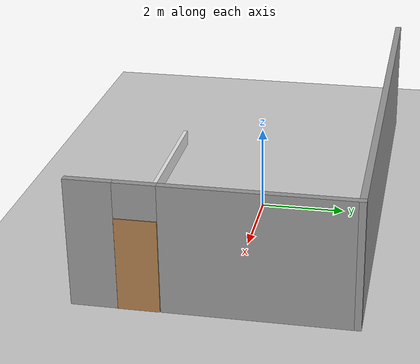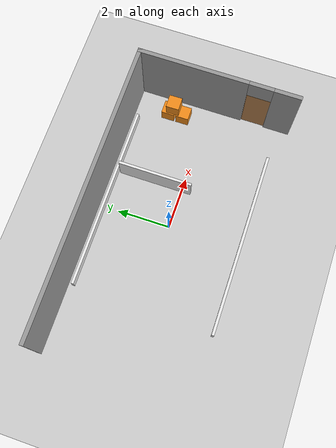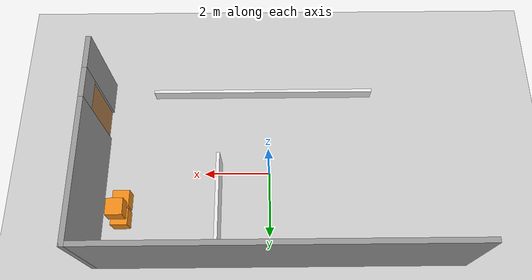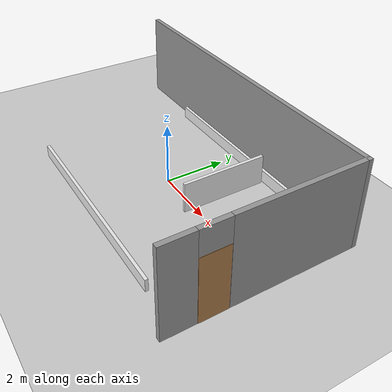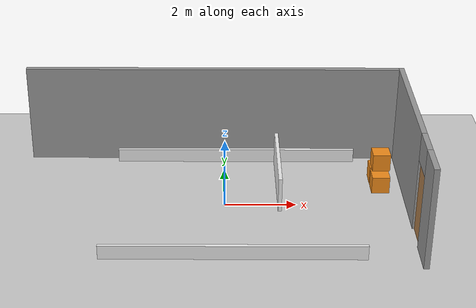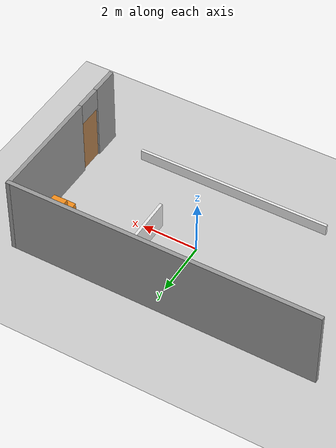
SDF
<sdf version="1.6">
 <world name="default">
  <model name="ground_plane">
   <static>1</static>
   <link name="link">
    <collision name="collision">
     <geometry><plane><normal>0 0 1</normal><size>100 100</size></plane></geometry>
     <surface>
      <contact><collide_bitmask>65535</collide_bitmask></contact>
      <friction><ode><mu>100</mu><mu2>50</mu2></ode></friction>
     </surface>
    </collision>
    <visual name="visual">
     <cast_shadows>0</cast_shadows>
     <geometry><plane><normal>0 0 1</normal><size>100 100</size></plane></geometry>
     <material>
      <script><uri>file://media/materials/scripts/gazebo.material</uri><name>Gazebo/Grey</name></script>
     </material>
    </visual>
   </link>
  </model>
  <model name="nrsl">
   <link name="Wall_1">
    <pose>5.41 2.97 0 0 -0 1.5708</pose>
    <visual name="Wall_1_Visual_0">
     <pose>-2.53694 0 1.45 0 -0 0</pose>
     <geometry><box><size>1.01612 0.15 2.9</size></box></geometry>
     <material>
      <script><uri>file://media/materials/scripts/gazebo.material</uri><name>Gazebo/Grey</name></script>
      <ambient>1 1 1 1</ambient>
     </material>
     <meta><layer>0</layer></meta>
    </visual>
    <visual name="Wall_1_Visual_1">
     <pose>0.965058 0 1.45 0 -0 0</pose>
     <geometry><box><size>4.15988 0.15 2.9</size></box></geometry>
     <material>
      <script><uri>file://media/materials/scripts/gazebo.material</uri><name>Gazebo/Grey</name></script>
      <ambient>1 1 1 1</ambient>
     </material>
     <meta><layer>0</layer></meta>
    </visual>
    <visual name="Wall_1_Visual_2">
     <pose>-1.57188 0 2.504 0 -0 0</pose>
     <geometry><box><size>0.914 0.15 0.792</size></box></geometry>
     <material>
      <script><uri>file://media/materials/scripts/gazebo.material</uri><name>Gazebo/Grey</name></script>
      <ambient>1 1 1 1</ambient>
     </material>
     <meta><layer>0</layer></meta>
    </visual>
    <collision name="Wall_1_Collision_0">
     <pose>-2.53694 0 1.45 0 -0 0</pose>
     <geometry><box><size>1.01612 0.15 2.9</size></box></geometry>
     <surface>
      <friction>
       <ode><mu>1</mu><mu2>1</mu2><fdir1>0 0 0</fdir1><slip1>0</slip1><slip2>0</slip2></ode>
       <torsional>
        <coefficient>1</coefficient>
        <patch_radius>0</patch_radius>
        <surface_radius>0</surface_radius>
        <use_patch_radius>1</use_patch_radius>
        <ode><slip>0</slip></ode>
       </torsional>
      </friction>
      <bounce><restitution_coefficient>0</restitution_coefficient><threshold>1e+06</threshold></bounce>
      <contact>
       <collide_without_contact>0</collide_without_contact>
       <collide_without_contact_bitmask>1</collide_without_contact_bitmask>
       <collide_bitmask>1</collide_bitmask>
       <ode>
        <soft_cfm>0</soft_cfm>
        <soft_erp>0.2</soft_erp>
        <kp>1e+13</kp>
        <kd>1</kd>
        <max_vel>0.01</max_vel>
        <min_depth>0</min_depth>
       </ode>
       <bullet>
        <split_impulse>1</split_impulse>
        <split_impulse_penetration_threshold>-0.01</split_impulse_penetration_threshold>
        <soft_cfm>0</soft_cfm>
        <soft_erp>0.2</soft_erp>
        <kp>1e+13</kp>
        <kd>1</kd>
       </bullet>
      </contact>
     </surface>
    </collision>
    <collision name="Wall_1_Collision_1">
     <pose>0.965058 0 1.45 0 -0 0</pose>
     <geometry><box><size>4.15988 0.15 2.9</size></box></geometry>
     <surface>
      <friction>
       <ode><mu>1</mu><mu2>1</mu2><fdir1>0 0 0</fdir1><slip1>0</slip1><slip2>0</slip2></ode>
       <torsional>
        <coefficient>1</coefficient>
        <patch_radius>0</patch_radius>
        <surface_radius>0</surface_radius>
        <use_patch_radius>1</use_patch_radius>
        <ode><slip>0</slip></ode>
       </torsional>
      </friction>
      <bounce><restitution_coefficient>0</restitution_coefficient><threshold>1e+06</threshold></bounce>
      <contact>
       <collide_without_contact>0</collide_without_contact>
       <collide_without_contact_bitmask>1</collide_without_contact_bitmask>
       <collide_bitmask>1</collide_bitmask>
       <ode>
        <soft_cfm>0</soft_cfm>
        <soft_erp>0.2</soft_erp>
        <kp>1e+13</kp>
        <kd>1</kd>
        <max_vel>0.01</max_vel>
        <min_depth>0</min_depth>
       </ode>
       <bullet>
        <split_impulse>1</split_impulse>
        <split_impulse_penetration_threshold>-0.01</split_impulse_penetration_threshold>
        <soft_cfm>0</soft_cfm>
        <soft_erp>0.2</soft_erp>
        <kp>1e+13</kp>
        <kd>1</kd>
       </bullet>
      </contact>
     </surface>
    </collision>
    <collision name="Wall_1_Collision_2">
     <pose>-1.57188 0 2.504 0 -0 0</pose>
     <geometry><box><size>0.914 0.15 0.792</size></box></geometry>
     <surface>
      <friction>
       <ode><mu>1</mu><mu2>1</mu2><fdir1>0 0 0</fdir1><slip1>0</slip1><slip2>0</slip2></ode>
       <torsional>
        <coefficient>1</coefficient>
        <patch_radius>0</patch_radius>
        <surface_radius>0</surface_radius>
        <use_patch_radius>1</use_patch_radius>
        <ode><slip>0</slip></ode>
       </torsional>
      </friction>
      <bounce><restitution_coefficient>0</restitution_coefficient><threshold>1e+06</threshold></bounce>
      <contact>
       <collide_without_contact>0</collide_without_contact>
       <collide_without_contact_bitmask>1</collide_without_contact_bitmask>
       <collide_bitmask>1</collide_bitmask>
       <ode>
        <soft_cfm>0</soft_cfm>
        <soft_erp>0.2</soft_erp>
        <kp>1e+13</kp>
        <kd>1</kd>
        <max_vel>0.01</max_vel>
        <min_depth>0</min_depth>
       </ode>
       <bullet>
        <split_impulse>1</split_impulse>
        <split_impulse_penetration_threshold>-0.01</split_impulse_penetration_threshold>
        <soft_cfm>0</soft_cfm>
        <soft_erp>0.2</soft_erp>
        <kp>1e+13</kp>
        <kd>1</kd>
       </bullet>
      </contact>
     </surface>
    </collision>
   </link>
   <link name="Wall_2">
    <pose>0 5.94 0 0 -0 3.14159</pose>
    <visual name="Wall_2_Visual">
     <pose>0 0 1.45 0 -0 0</pose>
     <geometry><box><size>10.97 0.15 2.9</size></box></geometry>
     <material>
      <script><uri>file://media/materials/scripts/gazebo.material</uri><name>Gazebo/Grey</name></script>
      <ambient>1 1 1 1</ambient>
     </material>
     <meta><layer>0</layer></meta>
    </visual>
    <collision name="Wall_2_Collision">
     <pose>0 0 1.45 0 -0 0</pose>
     <geometry><box><size>10.97 0.15 2.9</size></box></geometry>
     <surface>
      <friction>
       <ode><mu>1</mu><mu2>1</mu2><fdir1>0 0 0</fdir1><slip1>0</slip1><slip2>0</slip2></ode>
       <torsional>
        <coefficient>1</coefficient>
        <patch_radius>0</patch_radius>
        <surface_radius>0</surface_radius>
        <use_patch_radius>1</use_patch_radius>
        <ode><slip>0</slip></ode>
       </torsional>
      </friction>
      <bounce><restitution_coefficient>0</restitution_coefficient><threshold>1e+06</threshold></bounce>
      <contact>
       <collide_without_contact>0</collide_without_contact>
       <collide_without_contact_bitmask>1</collide_without_contact_bitmask>
       <collide_bitmask>1</collide_bitmask>
       <ode>
        <soft_cfm>0</soft_cfm>
        <soft_erp>0.2</soft_erp>
        <kp>1e+13</kp>
        <kd>1</kd>
        <max_vel>0.01</max_vel>
        <min_depth>0</min_depth>
       </ode>
       <bullet>
        <split_impulse>1</split_impulse>
        <split_impulse_penetration_threshold>-0.01</split_impulse_penetration_threshold>
        <soft_cfm>0</soft_cfm>
        <soft_erp>0.2</soft_erp>
        <kp>1e+13</kp>
        <kd>1</kd>
       </bullet>
      </contact>
     </surface>
    </collision>
   </link>
   <static>1</static>
   <pose>-0.282297 -3.10716 0 0 -0 0</pose>
  </model>
  <model name="door_0">
   <link name="link">
    <inertial>
     <mass>1</mass>
     <inertia>
      <ixx>0.166667</ixx>
      <ixy>0</ixy>
      <ixz>0</ixz>
      <iyy>0.166667</iyy>
      <iyz>0</iyz>
      <izz>0.166667</izz>
     </inertia>
    </inertial>
    <visual name="visual">
     <geometry><box><size>0.1 0.9 2.1</size></box></geometry>
     <material>
      <script><name>Gazebo/Wood</name><uri>file://media/materials/scripts/gazebo.material</uri></script>
     </material>
     <pose>0 0 1.05 0 -0 0</pose>
    </visual>
    <collision name="collision">
     <pose>0 0 1.05 0 -0 0</pose>
     <geometry><box><size>0.1 0.9 2.1</size></box></geometry>
     <surface>
      <friction>
       <ode><mu>1</mu><mu2>1</mu2><fdir1>0 0 0</fdir1><slip1>0</slip1><slip2>0</slip2></ode>
       <torsional>
        <coefficient>1</coefficient>
        <patch_radius>0</patch_radius>
        <surface_radius>0</surface_radius>
        <use_patch_radius>1</use_patch_radius>
        <ode><slip>0</slip></ode>
       </torsional>
      </friction>
      <bounce><restitution_coefficient>0</restitution_coefficient><threshold>1e+06</threshold></bounce>
      <contact>
       <collide_without_contact>0</collide_without_contact>
       <collide_without_contact_bitmask>1</collide_without_contact_bitmask>
       <collide_bitmask>1</collide_bitmask>
       <ode>
        <soft_cfm>0</soft_cfm>
        <soft_erp>0.2</soft_erp>
        <kp>1e+13</kp>
        <kd>1</kd>
        <max_vel>0.01</max_vel>
        <min_depth>0</min_depth>
       </ode>
       <bullet>
        <split_impulse>1</split_impulse>
        <split_impulse_penetration_threshold>-0.01</split_impulse_penetration_threshold>
        <soft_cfm>0</soft_cfm>
        <soft_erp>0.2</soft_erp>
        <kp>1e+13</kp>
        <kd>1</kd>
       </bullet>
      </contact>
     </surface>
    </collision>
   </link>
   <static>0</static>
   <pose>5.15935 -1.71289 -3e-06 -8e-06 0 0</pose>
  </model>
  <model name="box_12">
   <link name="link">
    <inertial>
     <mass>1</mass>
     <inertia>
      <ixx>0.166667</ixx>
      <ixy>0</ixy>
      <ixz>0</ixz>
      <iyy>0.166667</iyy>
      <iyz>0</iyz>
      <izz>0.166667</izz>
     </inertia>
    </inertial>
    <visual name="visual">
     <geometry><box><size>0.5 0.5 0.5</size></box></geometry>
     <material>
      <script><name>Gazebo/Orange</name><uri>file://media/materials/scripts/gazebo.material</uri></script>
     </material>
     <pose>0 0 0.25 0 -0 0</pose>
    </visual>
    <collision name="collision">
     <pose>0 0 0.25 0 -0 0</pose>
     <geometry><box><size>0.5 0.5 0.5</size></box></geometry>
     <surface>
      <friction>
       <ode><mu>1</mu><mu2>1</mu2><fdir1>0 0 0</fdir1><slip1>0</slip1><slip2>0</slip2></ode>
       <torsional>
        <coefficient>1</coefficient>
        <patch_radius>0</patch_radius>
        <surface_radius>0</surface_radius>
        <use_patch_radius>1</use_patch_radius>
        <ode><slip>0</slip></ode>
       </torsional>
      </friction>
      <bounce><restitution_coefficient>0</restitution_coefficient><threshold>1e+06</threshold></bounce>
      <contact>
       <collide_without_contact>0</collide_without_contact>
       <collide_without_contact_bitmask>1</collide_without_contact_bitmask>
       <collide_bitmask>1</collide_bitmask>
       <ode>
        <soft_cfm>0</soft_cfm>
        <soft_erp>0.2</soft_erp>
        <kp>1e+13</kp>
        <kd>1</kd>
        <max_vel>0.01</max_vel>
        <min_depth>0</min_depth>
       </ode>
       <bullet>
        <split_impulse>1</split_impulse>
        <split_impulse_penetration_threshold>-0.01</split_impulse_penetration_threshold>
        <soft_cfm>0</soft_cfm>
        <soft_erp>0.2</soft_erp>
        <kp>1e+13</kp>
        <kd>1</kd>
       </bullet>
      </contact>
     </surface>
    </collision>
   </link>
   <static>0</static>
   <pose>4.42985 1.46787 -0 0 -0 0.001116</pose>
  </model>
  <model name="box_13">
   <link name="link">
    <inertial>
     <mass>1</mass>
     <inertia>
      <ixx>0.166667</ixx>
      <ixy>0</ixy>
      <ixz>0</ixz>
      <iyy>0.166667</iyy>
      <iyz>0</iyz>
      <izz>0.166667</izz>
     </inertia>
    </inertial>
    <visual name="visual">
     <geometry><box><size>0.5 0.5 0.5</size></box></geometry>
     <material>
      <script><name>Gazebo/Orange</name><uri>file://media/materials/scripts/gazebo.material</uri></script>
     </material>
     <pose>0 0 0.25 0 -0 0</pose>
    </visual>
    <collision name="collision">
     <pose>0 0 0.25 0 -0 0</pose>
     <geometry><box><size>0.5 0.5 0.5</size></box></geometry>
     <surface>
      <friction>
       <ode><mu>1</mu><mu2>1</mu2><fdir1>0 0 0</fdir1><slip1>0</slip1><slip2>0</slip2></ode>
       <torsional>
        <coefficient>1</coefficient>
        <patch_radius>0</patch_radius>
        <surface_radius>0</surface_radius>
        <use_patch_radius>1</use_patch_radius>
        <ode><slip>0</slip></ode>
       </torsional>
      </friction>
      <bounce><restitution_coefficient>0</restitution_coefficient><threshold>1e+06</threshold></bounce>
      <contact>
       <collide_without_contact>0</collide_without_contact>
       <collide_without_contact_bitmask>1</collide_without_contact_bitmask>
       <collide_bitmask>1</collide_bitmask>
       <ode>
        <soft_cfm>0</soft_cfm>
        <soft_erp>0.2</soft_erp>
        <kp>1e+13</kp>
        <kd>1</kd>
        <max_vel>0.01</max_vel>
        <min_depth>0</min_depth>
       </ode>
       <bullet>
        <split_impulse>1</split_impulse>
        <split_impulse_penetration_threshold>-0.01</split_impulse_penetration_threshold>
        <soft_cfm>0</soft_cfm>
        <soft_erp>0.2</soft_erp>
        <kp>1e+13</kp>
        <kd>1</kd>
       </bullet>
      </contact>
     </surface>
    </collision>
   </link>
   <static>0</static>
   <pose>4.43593 0.901146 -3.5e-05 0 2.3e-05 -0.000634</pose>
  </model>
  <model name="box_1_3">
   <link name="link">
    <inertial>
     <mass>1</mass>
     <inertia>
      <ixx>0.166667</ixx>
      <ixy>0</ixy>
      <ixz>0</ixz>
      <iyy>0.166667</iyy>
      <iyz>0</iyz>
      <izz>0.166667</izz>
     </inertia>
    </inertial>
    <visual name="visual">
     <geometry><box><size>0.5 0.5 0.5</size></box></geometry>
     <material>
      <script><name>Gazebo/Orange</name><uri>file://media/materials/scripts/gazebo.material</uri></script>
     </material>
     <pose>0 0 0.75 0 -0 0</pose>
    </visual>
    <collision name="collision">
     <pose>0 0 0.75 0 -0 0</pose>
     <geometry><box><size>0.5 0.5 0.5</size></box></geometry>
     <surface>
      <friction>
       <ode><mu>1</mu><mu2>1</mu2><fdir1>0 0 0</fdir1><slip1>0</slip1><slip2>0</slip2></ode>
       <torsional>
        <coefficient>1</coefficient>
        <patch_radius>0</patch_radius>
        <surface_radius>0</surface_radius>
        <use_patch_radius>1</use_patch_radius>
        <ode><slip>0</slip></ode>
       </torsional>
      </friction>
      <bounce><restitution_coefficient>0</restitution_coefficient><threshold>1e+06</threshold></bounce>
      <contact>
       <collide_without_contact>0</collide_without_contact>
       <collide_without_contact_bitmask>1</collide_without_contact_bitmask>
       <collide_bitmask>1</collide_bitmask>
       <ode>
        <soft_cfm>0</soft_cfm>
        <soft_erp>0.2</soft_erp>
        <kp>1e+13</kp>
        <kd>1</kd>
        <max_vel>0.01</max_vel>
        <min_depth>0</min_depth>
       </ode>
       <bullet>
        <split_impulse>1</split_impulse>
        <split_impulse_penetration_threshold>-0.01</split_impulse_penetration_threshold>
        <soft_cfm>0</soft_cfm>
        <soft_erp>0.2</soft_erp>
        <kp>1e+13</kp>
        <kd>1</kd>
       </bullet>
      </contact>
     </surface>
    </collision>
   </link>
   <static>0</static>
   <pose>4.47408 1.30458 1.8e-05 2.3e-05 -6.3e-05 0.013138</pose>
  </model>
  <model name="fence1_0_1">
   <link name="link">
    <inertial>
     <mass>1</mass>
     <inertia>
      <ixx>0.166667</ixx>
      <ixy>0</ixy>
      <ixz>0</ixz>
      <iyy>0.166667</iyy>
      <iyz>0</iyz>
      <izz>0.166667</izz>
     </inertia>
    </inertial>
    <visual name="visual">
     <geometry><box><size>7 0.1 0.4</size></box></geometry>
     <material>
      <script><name>Gazebo/White</name><uri>file://media/materials/scripts/gazebo.material</uri></script>
     </material>
     <pose>0 0 0.2 0 -0 0</pose>
    </visual>
    <collision name="collision">
     <pose>0 0 0.2 0 -0 0</pose>
     <geometry><box><size>7 0.1 0.4</size></box></geometry>
     <surface>
      <friction>
       <ode><mu>1</mu><mu2>1</mu2><fdir1>0 0 0</fdir1><slip1>0</slip1><slip2>0</slip2></ode>
       <torsional>
        <coefficient>1</coefficient>
        <patch_radius>0</patch_radius>
        <surface_radius>0</surface_radius>
        <use_patch_radius>1</use_patch_radius>
        <ode><slip>0</slip></ode>
       </torsional>
      </friction>
      <bounce><restitution_coefficient>0</restitution_coefficient><threshold>1e+06</threshold></bounce>
      <contact>
       <collide_without_contact>0</collide_without_contact>
       <collide_without_contact_bitmask>1</collide_without_contact_bitmask>
       <collide_bitmask>1</collide_bitmask>
       <ode>
        <soft_cfm>0</soft_cfm>
        <soft_erp>0.2</soft_erp>
        <kp>1e+13</kp>
        <kd>1</kd>
        <max_vel>0.01</max_vel>
        <min_depth>0</min_depth>
       </ode>
       <bullet>
        <split_impulse>1</split_impulse>
        <split_impulse_penetration_threshold>-0.01</split_impulse_penetration_threshold>
        <soft_cfm>0</soft_cfm>
        <soft_erp>0.2</soft_erp>
        <kp>1e+13</kp>
        <kd>1</kd>
       </bullet>
      </contact>
     </surface>
    </collision>
   </link>
   <static>0</static>
   <pose>0.340675 2.57053 9e-06 -0.000274 -1e-06 0</pose>
  </model>
  <model name="fence1_0_0">
   <link name="link">
    <inertial>
     <mass>1</mass>
     <inertia>
      <ixx>0.166667</ixx>
      <ixy>0</ixy>
      <ixz>0</ixz>
      <iyy>0.166667</iyy>
      <iyz>0</iyz>
      <izz>0.166667</izz>
     </inertia>
    </inertial>
    <visual name="visual">
     <geometry><box><size>7 0.1 0.4</size></box></geometry>
     <material>
      <script><name>Gazebo/White</name><uri>file://media/materials/scripts/gazebo.material</uri></script>
     </material>
     <pose>0 0 0.2 0 -0 0</pose>
    </visual>
    <collision name="collision">
     <pose>0 0 0.2 0 -0 0</pose>
     <geometry><box><size>7 0.1 0.4</size></box></geometry>
     <surface>
      <friction>
       <ode><mu>1</mu><mu2>1</mu2><fdir1>0 0 0</fdir1><slip1>0</slip1><slip2>0</slip2></ode>
       <torsional>
        <coefficient>1</coefficient>
        <patch_radius>0</patch_radius>
        <surface_radius>0</surface_radius>
        <use_patch_radius>1</use_patch_radius>
        <ode><slip>0</slip></ode>
       </torsional>
      </friction>
      <bounce><restitution_coefficient>0</restitution_coefficient><threshold>1e+06</threshold></bounce>
      <contact>
       <collide_without_contact>0</collide_without_contact>
       <collide_without_contact_bitmask>1</collide_without_contact_bitmask>
       <collide_bitmask>1</collide_bitmask>
       <ode>
        <soft_cfm>0</soft_cfm>
        <soft_erp>0.2</soft_erp>
        <kp>1e+13</kp>
        <kd>1</kd>
        <max_vel>0.01</max_vel>
        <min_depth>0</min_depth>
       </ode>
       <bullet>
        <split_impulse>1</split_impulse>
        <split_impulse_penetration_threshold>-0.01</split_impulse_penetration_threshold>
        <soft_cfm>0</soft_cfm>
        <soft_erp>0.2</soft_erp>
        <kp>1e+13</kp>
        <kd>1</kd>
       </bullet>
      </contact>
     </surface>
    </collision>
   </link>
   <static>0</static>
   <pose>0.201438 -2.71362 1e-06 -2.7e-05 0 0</pose>
  </model>
  <model name="obstacle_0">
   <link name="link">
    <inertial>
     <mass>1</mass>
     <inertia>
      <ixx>0.166667</ixx>
      <ixy>0</ixy>
      <ixz>0</ixz>
      <iyy>0.166667</iyy>
      <iyz>0</iyz>
      <izz>0.166667</izz>
     </inertia>
    </inertial>
    <visual name="visual">
     <geometry><box><size>0.1 2.8 1</size></box></geometry>
     <material>
      <script><name>Gazebo/White</name><uri>file://media/materials/scripts/gazebo.material</uri></script>
     </material>
     <pose>0 0 0.5 0 -0 0</pose>
    </visual>
    <collision name="collision">
     <pose>0 0 0.5 0 -0 0</pose>
     <geometry><box><size>0.1 2.8 1</size></box></geometry>
     <surface>
      <friction>
       <ode><mu>1</mu><mu2>1</mu2><fdir1>0 0 0</fdir1><slip1>0</slip1><slip2>0</slip2></ode>
       <torsional>
        <coefficient>1</coefficient>
        <patch_radius>0</patch_radius>
        <surface_radius>0</surface_radius>
        <use_patch_radius>1</use_patch_radius>
        <ode><slip>0</slip></ode>
       </torsional>
      </friction>
      <bounce><restitution_coefficient>0</restitution_coefficient><threshold>1e+06</threshold></bounce>
      <contact>
       <collide_without_contact>0</collide_without_contact>
       <collide_without_contact_bitmask>1</collide_without_contact_bitmask>
       <collide_bitmask>1</collide_bitmask>
       <ode>
        <soft_cfm>0</soft_cfm>
        <soft_erp>0.2</soft_erp>
        <kp>1e+13</kp>
        <kd>1</kd>
        <max_vel>0.01</max_vel>
        <min_depth>0</min_depth>
       </ode>
       <bullet>
        <split_impulse>1</split_impulse>
        <split_impulse_penetration_threshold>-0.01</split_impulse_penetration_threshold>
        <soft_cfm>0</soft_cfm>
        <soft_erp>0.2</soft_erp>
        <kp>1e+13</kp>
        <kd>1</kd>
       </bullet>
      </contact>
     </surface>
    </collision>
   </link>
   <static>0</static>
   <pose>1.52483 1.05914 -8e-06 6e-06 8e-06 0</pose>
  </model>
 </world>
</sdf>
